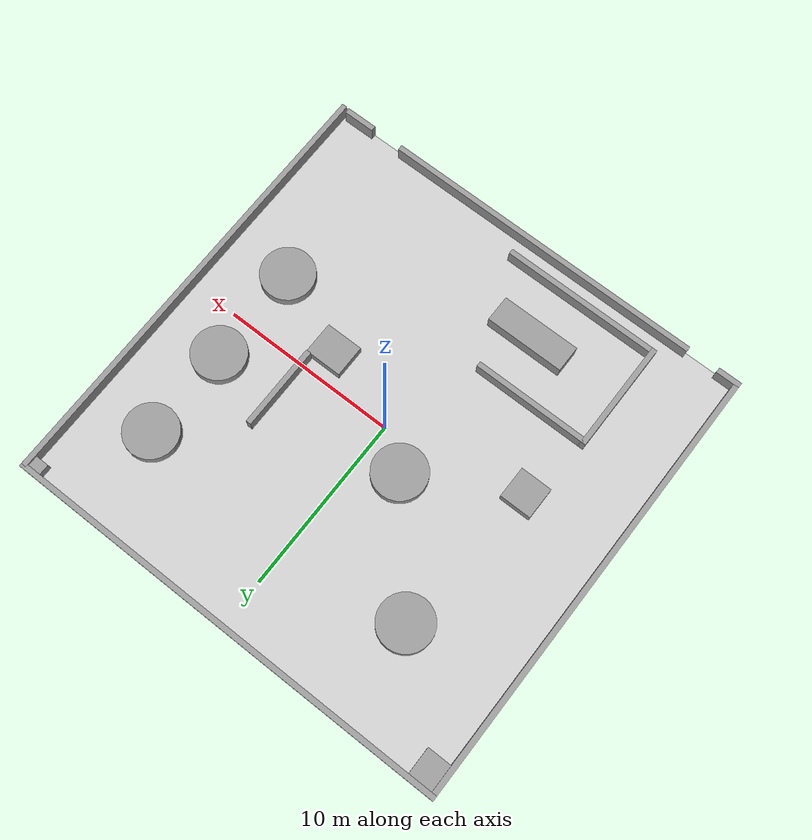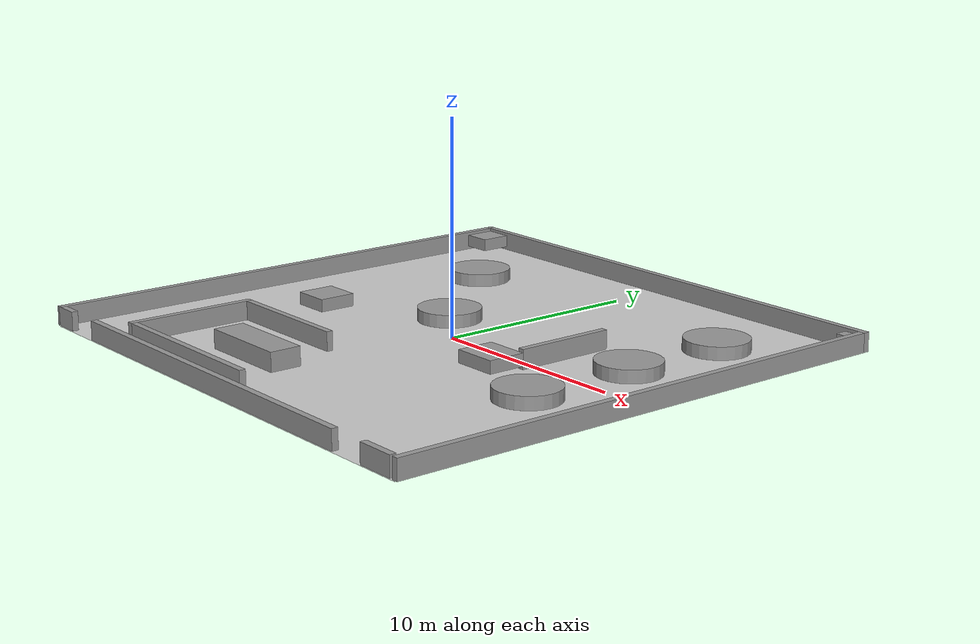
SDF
<?xml version="1.0" ?>
<sdf version="1.6">
  <world name="asw_robot_stadium_3x">

    <!-- Light -->
    <light name='sun' type='directional'>
      <cast_shadows>1</cast_shadows>
      <pose>0 0 30 0 0 0</pose>
      <diffuse>0.8 0.8 0.8 1</diffuse>
      <specular>0.2 0.2 0.2 1</specular>
      <attenuation>
        <range>3000</range>
        <constant>0.9</constant>
        <linear>0.01</linear>
        <quadratic>0.001</quadratic>
      </attenuation>
      <direction>-0.5 0.1 -0.9</direction>
    </light>

    <!-- ASW Robot Stadium Ground (3x scale) -->
    <model name='asw_robot_stadium_ground'>
      <static>1</static>
      <link name='link'>
        <collision name='collision'>
          <geometry>
            <plane>
              <normal>0 0 1</normal>
              <size>25.5 25.5</size>
            </plane>
          </geometry>
          <surface>
            <friction>
              <ode>
                <mu>100</mu>
                <mu2>50</mu2>
              </ode>
            </friction>
          </surface>
        </collision>
        <visual name='visual'>
          <cast_shadows>0</cast_shadows>
          <geometry>
            <plane>
              <normal>0 0 1</normal>
              <size>25.5 25.5</size>
            </plane>
          </geometry>
          <material>
            <script>
              <uri>model://aa10_ground/materials/scripts</uri>
              <uri>model://aa10_ground/materials/textures/</uri>
              <name>TrackGround/Image</name>
            </script>
          </material>
        </visual>
      </link>
      <pose>0 0 0.0003 0 0 0</pose>
    </model>

    <!-- Track Boundaries and Walls (3x scale) -->
    <model name='track_boundaries'>
      <static>1</static>

      <!-- Outer Walls -->
      <!-- Top Wall -->
      <link name='wall_top'>
        <collision name='collision'>
          <geometry>
            <box>
              <size>25.8 0.3 0.9</size>
            </box>
          </geometry>
          <pose>0 0 0.45 0 0 0</pose>
        </collision>
        <visual name='visual'>
          <pose>0 0 0.45 0 0 0</pose>
          <geometry>
            <box>
              <size>25.8 0.3 0.9</size>
            </box>
          </geometry>
          <material>
            <script>
              <uri>file://media/materials/scripts/gazebo.material</uri>
              <name>Gazebo/Grey</name>
            </script>
          </material>
        </visual>
        <pose>0 12.75 0 0 0 0</pose>
      </link>

      <!-- Left Wall -->
      <link name='wall_left'>
        <collision name='collision'>
          <geometry>
            <box>
              <size>25.5 0.3 0.9</size>
            </box>
          </geometry>
          <pose>0 0 0.45 0 0 0</pose>
        </collision>
        <visual name='visual'>
          <pose>0 0 0.45 0 0 0</pose>
          <geometry>
            <box>
              <size>25.5 0.3 0.9</size>
            </box>
          </geometry>
          <material>
            <script>
              <uri>file://media/materials/scripts/gazebo.material</uri>
              <name>Gazebo/Grey</name>
            </script>
          </material>
        </visual>
        <pose>-12.75 0 0 0 0 1.5708</pose>
      </link>

      <!-- Right Wall -->
      <link name='wall_right'>
        <collision name='collision'>
          <geometry>
            <box>
              <size>25.5 0.3 0.9</size>
            </box>
          </geometry>
          <pose>0 0 0.45 0 0 0</pose>
        </collision>
        <visual name='visual'>
          <pose>0 0 0.45 0 0 0</pose>
          <geometry>
            <box>
              <size>25.5 0.3 0.9</size>
            </box>
          </geometry>
          <material>
            <script>
              <uri>file://media/materials/scripts/gazebo.material</uri>
              <name>Gazebo/Grey</name>
            </script>
          </material>
        </visual>
        <pose>12.75 0 0 0 0 1.5708</pose>
      </link>

      <!-- Inner Track Walls (3x scale) -->

      <link name='wall_10'>
        <collision name='collision'>
          <geometry>
            <box>
              <size>1.35 0.3 0.9</size>
            </box>
          </geometry>
          <pose>0 0 0.45 0 0 0</pose>
        </collision>
        <visual name='visual'>
          <pose>0 0 0.45 0 0 0</pose>
          <geometry>
            <box>
              <size>1.35 0.3 0.9</size>
            </box>
          </geometry>
          <material>
            <script>
              <uri>file://media/materials/scripts/gazebo.material</uri>
              <name>Gazebo/Grey</name>
            </script>
          </material>
        </visual>
        <pose>-12.225 -12.6 0 0 0 0</pose>
      </link>

      <link name='wall_13'>
        <collision name='collision'>
          <geometry>
            <box>
              <size>18.6 0.3 0.9</size>
            </box>
          </geometry>
          <pose>0 0 0.45 0 0 0</pose>
        </collision>
        <visual name='visual'>
          <pose>0 0 0.45 0 0 0</pose>
          <geometry>
            <box>
              <size>18.6 0.3 0.9</size>
            </box>
          </geometry>
          <material>
            <script>
              <uri>file://media/materials/scripts/gazebo.material</uri>
              <name>Gazebo/Grey</name>
            </script>
          </material>
        </visual>
        <pose>-0.45 -12.6 0 0 0 0</pose>
      </link>

      <link name='wall_15'>
        <collision name='collision'>
          <geometry>
            <box>
              <size>1.8 0.3 0.9</size>
            </box>
          </geometry>
          <pose>0 0 0.45 0 0 0</pose>
        </collision>
        <visual name='visual'>
          <pose>0 0 0.45 0 0 0</pose>
          <geometry>
            <box>
              <size>1.8 0.3 0.9</size>
            </box>
          </geometry>
          <material>
            <script>
              <uri>file://media/materials/scripts/gazebo.material</uri>
              <name>Gazebo/Grey</name>
            </script>
          </material>
        </visual>
        <pose>11.55 -12.6 0 0 0 0</pose>
      </link>

      <link name='wall_17'>
        <collision name='collision'>
          <geometry>
            <box>
              <size>6.6 0.3 0.9</size>
            </box>
          </geometry>
          <pose>0 0 0.45 0 0 0</pose>
        </collision>
        <visual name='visual'>
          <pose>0 0 0.45 0 0 0</pose>
          <geometry>
            <box>
              <size>6.6 0.3 0.9</size>
            </box>
          </geometry>
          <material>
            <script>
              <uri>file://media/materials/scripts/gazebo.material</uri>
              <name>Gazebo/Grey</name>
            </script>
          </material>
        </visual>
        <pose>-5.1 -5.4 0 0 0 0</pose>
      </link>

      <link name='wall_18'>
        <collision name='collision'>
          <geometry>
            <box>
              <size>6.3 0.3 0.9</size>
            </box>
          </geometry>
          <pose>0 0 0.45 0 0 0</pose>
        </collision>
        <visual name='visual'>
          <pose>0 0 0.45 0 0 0</pose>
          <geometry>
            <box>
              <size>6.3 0.3 0.9</size>
            </box>
          </geometry>
          <material>
            <script>
              <uri>file://media/materials/scripts/gazebo.material</uri>
              <name>Gazebo/Grey</name>
            </script>
          </material>
        </visual>
        <pose>-8.4 -8.4 0 0 0 -1.5708</pose>
      </link>

      <link name='wall_19'>
        <collision name='collision'>
          <geometry>
            <box>
              <size>9.0 0.3 0.9</size>
            </box>
          </geometry>
          <pose>0 0 0.45 0 0 0</pose>
        </collision>
        <visual name='visual'>
          <pose>0 0 0.45 0 0 0</pose>
          <geometry>
            <box>
              <size>9.0 0.3 0.9</size>
            </box>
          </geometry>
          <material>
            <script>
              <uri>file://media/materials/scripts/gazebo.material</uri>
              <name>Gazebo/Grey</name>
            </script>
          </material>
        </visual>
        <pose>-3.9 -11.4 0 0 0 3.14159</pose>
      </link>

      <link name='wall_20'>
        <collision name='collision'>
          <geometry>
            <box>
              <size>4.8 0.3 0.9</size>
            </box>
          </geometry>
          <pose>0 0 0.45 0 0 0</pose>
        </collision>
        <visual name='visual'>
          <pose>0 0 0.45 0 0 0</pose>
          <geometry>
            <box>
              <size>4.8 0.3 0.9</size>
            </box>
          </geometry>
          <material>
            <script>
              <uri>file://media/materials/scripts/gazebo.material</uri>
              <name>Gazebo/Grey</name>
            </script>
          </material>
        </visual>
        <pose>5.4 1.8 0 0 0 -1.5708</pose>
      </link>

      <link name='wall_22'>
        <collision name='collision'>
          <geometry>
            <box>
              <size>4.5 1.5 0.9</size>
            </box>
          </geometry>
          <pose>0 0 0.45 0 0 0</pose>
        </collision>
        <visual name='visual'>
          <pose>0 0 0.45 0 0 0</pose>
          <geometry>
            <box>
              <size>4.5 1.5 0.9</size>
            </box>
          </geometry>
          <material>
            <script>
              <uri>file://media/materials/scripts/gazebo.material</uri>
              <name>Gazebo/Grey</name>
            </script>
          </material>
        </visual>
        <pose>-3.0 -8.40 0 0 0 0</pose>
      </link>

      <!-- Cylindrical obstacles (3x scale) -->
      <link name='cylinder_10'>
        <collision name='collision'>
          <geometry>
            <cylinder>
              <radius>1.5</radius>
              <length>0.6</length>
            </cylinder>
          </geometry>
          <pose>0 0 0.45 0 0 0</pose>
        </collision>
        <visual name='visual'>
          <pose>0 0 0.45 0 0 0</pose>
          <geometry>
            <cylinder>
              <radius>1.5</radius>
              <length>0.6</length>
            </cylinder>
          </geometry>
          <material>
            <script>
              <uri>file://media/materials/scripts/gazebo.material</uri>
              <name>Gazebo/Grey</name>
            </script>
          </material>
        </visual>
        <pose>-6.9 7.2 0 0 0 0</pose>
      </link>

      <link name='cylinder_11'>
        <collision name='collision'>
          <geometry>
            <cylinder>
              <radius>1.5</radius>
              <length>0.6</length>
            </cylinder>
          </geometry>
          <pose>0 0 0.45 0 0 0</pose>
        </collision>
        <visual name='visual'>
          <pose>0 0 0.45 0 0 0</pose>
          <geometry>
            <cylinder>
              <radius>1.5</radius>
              <length>0.6</length>
            </cylinder>
          </geometry>
          <material>
            <script>
              <uri>file://media/materials/scripts/gazebo.material</uri>
              <name>Gazebo/Grey</name>
            </script>
          </material>
        </visual>
        <pose>9.0 7.5 0 0 0 0</pose>
      </link>

      <link name='cylinder_12'>
        <collision name='collision'>
          <geometry>
            <cylinder>
              <radius>1.5</radius>
              <length>0.6</length>
            </cylinder>
          </geometry>
          <pose>0 0 0.45 0 0 0</pose>
        </collision>
        <visual name='visual'>
          <pose>0 0 0.45 0 0 0</pose>
          <geometry>
            <cylinder>
              <radius>1.5</radius>
              <length>0.6</length>
            </cylinder>
          </geometry>
          <material>
            <script>
              <uri>file://media/materials/scripts/gazebo.material</uri>
              <name>Gazebo/Grey</name>
            </script>
          </material>
        </visual>
        <pose>9.0 2.25 0 0 0 0</pose>
      </link>

      <link name='cylinder_13'>
        <collision name='collision'>
          <geometry>
            <cylinder>
              <radius>1.5</radius>
              <length>0.6</length>
            </cylinder>
          </geometry>
          <pose>0 0 0.45 0 0 0</pose>
        </collision>
        <visual name='visual'>
          <pose>0 0 0.45 0 0 0</pose>
          <geometry>
            <cylinder>
              <radius>1.5</radius>
              <length>0.6</length>
            </cylinder>
          </geometry>
          <material>
            <script>
              <uri>file://media/materials/scripts/gazebo.material</uri>
              <name>Gazebo/Grey</name>
            </script>
          </material>
        </visual>
        <pose>9.0 -3.3 0 0 0 0</pose>
      </link>

      <link name='cylinder_25'>
        <collision name='collision'>
          <geometry>
            <cylinder>
              <radius>1.5</radius>
              <length>0.6</length>
            </cylinder>
          </geometry>
          <pose>0 0 0.45 0 0 0</pose>
        </collision>
        <visual name='visual'>
          <pose>0 0 0.45 0 0 0</pose>
          <geometry>
            <cylinder>
              <radius>1.5</radius>
              <length>0.6</length>
            </cylinder>
          </geometry>
          <material>
            <script>
              <uri>file://media/materials/scripts/gazebo.material</uri>
              <name>Gazebo/Grey</name>
            </script>
          </material>
        </visual>
        <pose>-2.1 1.5 0 0 0 0</pose>
      </link>

      <!-- Box obstacles (3x scale) -->
      <link name='wall_21'>
        <collision name='collision'>
          <geometry>
            <box>
              <size>1.8 1.8 0.6</size>
            </box>
          </geometry>
          <pose>0 0 0.45 0 0 0</pose>
        </collision>
        <visual name='visual'>
          <pose>0 0 0.45 0 0 0</pose>
          <geometry>
            <box>
              <size>1.8 1.8 0.6</size>
            </box>
          </geometry>
          <material>
            <script>
              <uri>file://media/materials/scripts/gazebo.material</uri>
              <name>Gazebo/Grey</name>
            </script>
          </material>
        </visual>
        <pose>-7.65 -1.5 0 0 0 0</pose>
      </link>

      <link name='box_10'>
        <collision name='collision'>
          <geometry>
            <box>
              <size>2.1 1.8 0.6</size>
            </box>
          </geometry>
          <pose>0 0 0.45 0 0 0</pose>
        </collision>
        <visual name='visual'>
          <pose>0 0 0.45 0 0 0</pose>
          <geometry>
            <box>
              <size>2.1 1.8 0.6</size>
            </box>
          </geometry>
          <material>
            <script>
              <uri>file://media/materials/scripts/gazebo.material</uri>
              <name>Gazebo/Grey</name>
            </script>
          </material>
        </visual>
        <pose>4.5 -1.5 0 0 0 0</pose>
      </link>

      <link name='wall_23'>
        <collision name='collision'>
          <geometry>
            <box>
              <size>1.5 1.5 0.6</size>
            </box>
          </geometry>
          <pose>0 0 0.45 0 0 0</pose>
        </collision>
        <visual name='visual'>
          <pose>0 0 0.45 0 0 0</pose>
          <geometry>
            <box>
              <size>1.5 1.5 0.6</size>
            </box>
          </geometry>
          <material>
            <script>
              <uri>file://media/materials/scripts/gazebo.material</uri>
              <name>Gazebo/Grey</name>
            </script>
          </material>
        </visual>
        <pose>-12.0 11.85 0 0 0 0</pose>
      </link>

      <link name='wall_24'>
        <collision name='collision'>
          <geometry>
            <box>
              <size>0.9 0.9 0.6</size>
            </box>
          </geometry>
          <pose>0 0 0.45 0 0 0</pose>
        </collision>
        <visual name='visual'>
          <pose>0 0 0.45 0 0 0</pose>
          <geometry>
            <box>
              <size>0.9 0.9 0.6</size>
            </box>
          </geometry>
          <material>
            <script>
              <uri>file://media/materials/scripts/gazebo.material</uri>
              <name>Gazebo/Grey</name>
            </script>
          </material>
        </visual>
        <pose>12.3 12.45 0 0 0 0</pose>
      </link>

    </model>

    <!-- Physics -->
    <physics name="default_physics" default="0" type="ode">
      <max_step_size>0.001</max_step_size>
      <real_time_factor>1</real_time_factor>
      <real_time_update_rate>1000</real_time_update_rate>
    </physics>

    <gravity>0 0 -9.8</gravity>

    <!-- Scene -->
    <scene>
      <ambient>0.4 0.4 0.4 1</ambient>
      <background>0.7 0.7 0.7 1</background>
      <shadows>1</shadows>
    </scene>

    <!-- Camera -->
    <gui fullscreen='0'>
      <camera name='user_camera'>
        <pose>0 -30 24 0 0.5 1.57</pose>
        <view_controller>orbit</view_controller>
        <projection_type>perspective</projection_type>
      </camera>
    </gui>

  </world>
</sdf>
